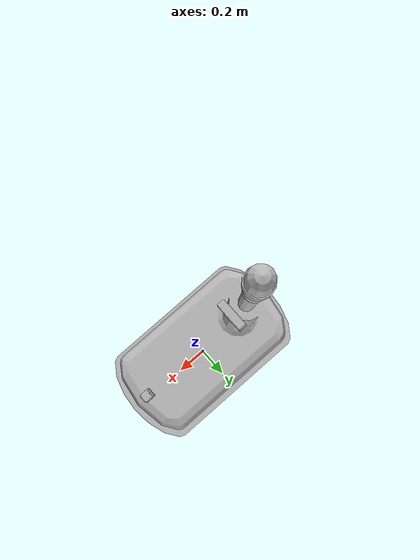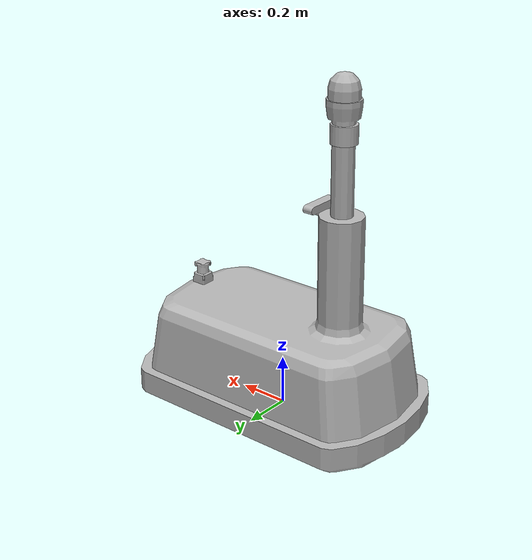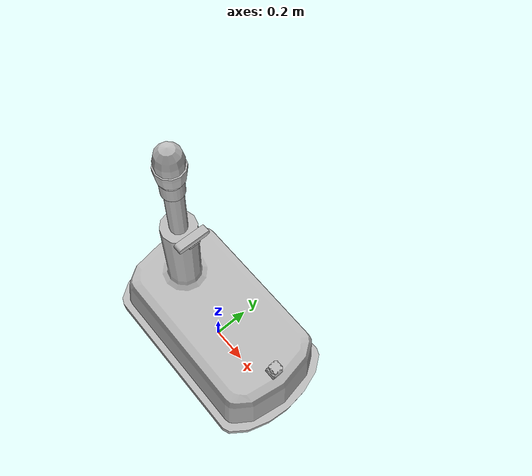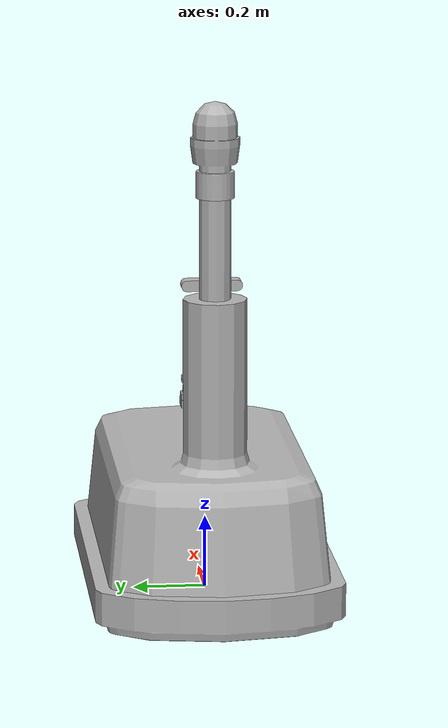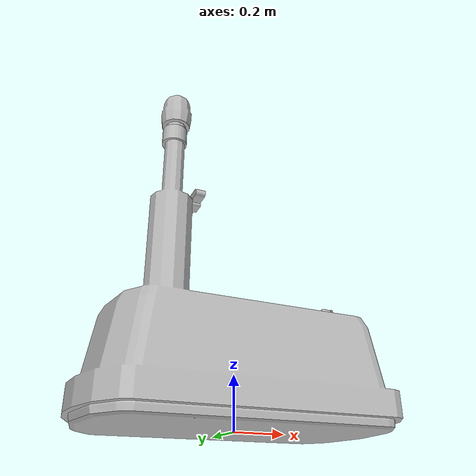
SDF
<?xml version="1.0" ?>
<sdf version="1.6">
  <model name="warehouse_robot">
    <static>false</static>
    <link name="base_link">
      <visual name="visual">
        <pose>0 0 0.0 0 0 -1.5708</pose>
        <geometry>
          <mesh>
            <uri>meshes/robot.dae</uri>
          </mesh>
        </geometry>
      </visual>
      <collision name="collision_base">
        <pose>0 0 0.20437 0 0 0</pose>
        <geometry>
          <box>
            <size>0.55508 1.0228 0.40874</size>
          </box>
        </geometry>
      </collision>
      <collision name="collision_bumper">
        <pose>0 0 0.062205 0 0 0</pose>
        <geometry>
          <box>
            <size>0.67266 1.17126 0.12441</size>
          </box>
        </geometry>
      </collision>
      <collision name="collision_column_large">
        <pose>0 -0.27539 0.43738 0 0 0</pose>
        <geometry>
          <cylinder>
            <radius>0.08652</radius>
            <length>0.87476</length>
          </cylinder>
        </geometry>
      </collision>
      <collision name="collision_column_small">
        <pose>0 -0.27539 0.70424 0 0 0</pose>
        <geometry>
          <cylinder>
            <radius>0.04261</radius>
            <length>1.40848</length>
          </cylinder>
        </geometry>
      </collision>
      <!-- IMU -->
      <sensor name="imu" type="imu">
        <pose>0 0 0.2 0 0 0</pose>
        <update_rate>100</update_rate>
        <always_on>true</always_on>
        <topic>/robot/imu</topic>
        <imu>
        </imu>
        <gz_frame_id>base_link</gz_frame_id>
      </sensor>
    </link>

    <!-- Sensors: Camera, Lidar, IMU -->
    <link name="camera_rgbd_link">
      <visual name="visual_camera">
        <pose>-0.2 0 0.86 0 0 1.5708</pose>
        <geometry>
          <mesh>
            <uri>model://rgbd_camera/meshes/3dCamera.dae</uri>
          </mesh>
        </geometry>
      </visual>
      <sensor name="front_camera" type="camera">
        <pose>-0.2 0 0.86 0 0 0</pose>
        <update_rate>30</update_rate>
        <always_on>true</always_on>
        <visualize>true</visualize>
        <topic>/robot/camera/image</topic> <!-- Topic in Gazebo -->
        <camera>
          <horizontal_fov>1.047</horizontal_fov>
          <image>
            <width>640</width>
            <height>480</height>
            <format>R8G8B8</format>
          </image>
          <clip>
            <near>0.1</near>
            <far>50.0</far>
          </clip>
        </camera>
        <gz_frame_id>camera_rgbd_link</gz_frame_id>
      </sensor>
    </link>
    <link name="lidar_3d_link">
      <pose>-0.278 0 1.15 0 0 0</pose>
      <visual name="visual_lidar3d">
        <geometry>
          <mesh>
            <uri>model://lidar_3d/meshes/lidar_3d.dae</uri>
          </mesh>
        </geometry>
      </visual>
      <!-- LIDAR 3D (type Velodyne / Ouster simple) -->
      <sensor name="lidar_3d" type="gpu_lidar">
        <update_rate>10</update_rate>
        <always_on>true</always_on>
        <visualize>true</visualize>
        <topic>/robot/lidar3d</topic>
        <lidar>
          <scan>
            <horizontal>
              <samples>1024</samples>
              <resolution>1</resolution>
              <min_angle>-3.14159</min_angle>
              <max_angle>3.14159</max_angle>
            </horizontal>
            <vertical>
              <samples>64</samples>
              <resolution>1</resolution>
              <min_angle>-0.2897</min_angle>
              <max_angle>0.2897</max_angle>
            </vertical>
          </scan>
          <range>
            <min>0.8</min>
            <max>20</max>
            <resolution>0.003</resolution>
          </range>
          <noise>
            <type>gaussian</type>
            <mean>0</mean>
            <stddev>0.03</stddev>
          </noise>
        </lidar>
        <gz_frame_id>lidar_3d_link</gz_frame_id>
      </sensor>
    </link>
    <link name="lidar_2d_link">
      <pose>0.42 0 0.415 0 0 0</pose>
      <visual name="visual_lidar2d">
        <geometry>
          <mesh>
            <uri>model://lidar_2d/meshes/lidar_2d.dae</uri>
          </mesh>
        </geometry>
      </visual>
      <sensor name="lidar_2d" type="gpu_lidar">
        <update_rate>20</update_rate>
        <always_on>true</always_on>
        <visualize>true</visualize>
        <topic>/robot/lidar2d/scan</topic>
        <lidar>
          <scan>
            <horizontal>
              <samples>920</samples>
              <resolution>1</resolution>
              <min_angle>-2.8</min_angle>
              <max_angle>2.8</max_angle>
            </horizontal>
          </scan>
          <range>
            <min>0.5</min>
            <max>10</max>
            <resolution>0.03</resolution>
          </range>
          <noise>
            <type>gaussian</type>
            <mean>0</mean>
            <stddev>0.01</stddev>
          </noise>
        </lidar>
        <gz_frame_id>lidar_2d_link</gz_frame_id>
      </sensor>
    </link>
    <!-- Wheels: links           -->
    <!-- FRONT LEFT WHEEL -->
    <link name="left_front_wheel_link">
      <pose>0.25 0.26 0.129 -1.57 0.0 0</pose>
      <inertial>
        <mass>1.0</mass>
        <inertia>
          <ixx>0.001</ixx>
          <ixy>0.0</ixy>
          <ixz>0.0</ixz>
          <iyy>0.001</iyy>
          <iyz>0.0</iyz>
          <izz>0.001</izz>
        </inertia>
      </inertial>
      <collision name="left_front_wheel_collision">
        <geometry>
          <cylinder>
            <radius>0.129</radius>
            <length>0.05</length>
          </cylinder>
        </geometry>
      </collision>
      <visual name="left_front_wheel_visual">
        <geometry>
          <cylinder>
            <radius>0.129</radius>
            <length>0.05</length>
          </cylinder>
        </geometry>
      </visual>
    </link>
    <!-- REAR LEFT WHEEL -->
    <link name="left_rear_wheel_link">
      <pose>-0.25 0.26 0.129 -1.57 0 0</pose>
      <inertial>
        <mass>1.0</mass>
        <inertia>
          <ixx>0.001</ixx>
          <ixy>0.0</ixy>
          <ixz>0.0</ixz>
          <iyy>0.001</iyy>
          <iyz>0.0</iyz>
          <izz>0.001</izz>
        </inertia>
      </inertial>
      <collision name="left_rear_wheel_collision">
        <geometry>
          <cylinder>
            <radius>0.129</radius>
            <length>0.05</length>
          </cylinder>
        </geometry>
      </collision>
      <visual name="left_rear_wheel_visual">
        <geometry>
          <cylinder>
            <radius>0.129</radius>
            <length>0.05</length>
          </cylinder>
        </geometry>
      </visual>
    </link>
    <!-- FRONT RIGHT WHEEL -->
    <link name="right_front_wheel_link">
      <pose>0.25 -0.26 0.129 -1.57 0 0</pose>
      <inertial>
        <mass>1.0</mass>
        <inertia>
          <ixx>0.001</ixx>
          <ixy>0.0</ixy>
          <ixz>0.0</ixz>
          <iyy>0.001</iyy>
          <iyz>0.0</iyz>
          <izz>0.001</izz>
        </inertia>
      </inertial>
      <collision name="right_front_wheel_collision">
        <geometry>
          <cylinder>
            <radius>0.129</radius>
            <length>0.05</length>
          </cylinder>
        </geometry>
      </collision>
      <visual name="right_front_wheel_visual">
        <geometry>
          <cylinder>
            <radius>0.129</radius>
            <length>0.05</length>
          </cylinder>
        </geometry>
      </visual>
    </link>
    <!-- REAR RIGHT WHEEL -->
    <link name="right_rear_wheel_link">
      <pose>-0.25 -0.26 0.129 -1.57 0 0</pose>
      <inertial>
        <mass>1.0</mass>
        <inertia>
          <ixx>0.001</ixx>
          <ixy>0.0</ixy>
          <ixz>0.0</ixz>
          <iyy>0.001</iyy>
          <iyz>0.0</iyz>
          <izz>0.001</izz>
        </inertia>
      </inertial>
      <collision name="right_rear_wheel_collision">
        <geometry>
          <cylinder>
            <radius>0.129</radius>
            <length>0.05</length>
          </cylinder>
        </geometry>
      </collision>
      <visual name="right_rear_wheel_visual">
        <geometry>
          <cylinder>
            <radius>0.129</radius>
            <length>0.05</length>
          </cylinder>
        </geometry>
      </visual>
    </link>
    <!-- Wheels: Joint           -->
    <joint name="left_front_wheel" type="revolute">
      <parent>base_link</parent>
      <child>left_front_wheel_link</child>
      <pose>0 0 0 0 0 0</pose>
        <axis>
            <xyz>0 0 1</xyz>
            <limit>
              <lower>-1.79769e+308</lower>
              <upper>1.79769e+308</upper>
            </limit>
        </axis>
    </joint>
    <joint name="left_rear_wheel" type="revolute">
      <parent>base_link</parent>
      <child>left_rear_wheel_link</child>
      <pose>0 0 0 0 0 0</pose>
         <axis>
            <xyz>0 0 1</xyz>
            <limit>
              <lower>-1.79769e+308</lower>
              <upper>1.79769e+308</upper>
            </limit>
        </axis>
    </joint>
    <joint name="right_front_wheel" type="revolute">
      <parent>base_link</parent>
      <child>right_front_wheel_link</child>
      <pose>0 0 0 0 0 0</pose>
        <axis>
            <xyz>0 0 1</xyz>
            <limit>
              <lower>-1.79769e+308</lower>
              <upper>1.79769e+308</upper>
            </limit>
        </axis>
    </joint>
    <joint name="right_rear_wheel" type="revolute">
      <parent>base_link</parent>
      <child>right_rear_wheel_link</child>
      <pose>0 0 0 0 0 0</pose>
         <axis>
            <xyz>0 0 1</xyz>
            <limit>
              <lower>-1.79769e+308</lower>
              <upper>1.79769e+308</upper>
            </limit>
        </axis>
    </joint>
    <!-- Sensor: Joint           -->
    <joint name="joint_camera_rgbd" type="fixed">
      <parent>base_link</parent>
      <child>camera_rgbd_link</child>
      <pose>0 0 0 0 0 0</pose>
    </joint>
    <joint name="joint_lidar_3d" type="fixed">
      <parent>base_link</parent>
      <child>lidar_3d_link</child>
      <pose>0 0 0 0 0 0</pose>
    </joint>
    <joint name="joint_lidar_2d" type="fixed">
      <parent>base_link</parent>
      <child>lidar_2d_link</child>
      <pose>0 0 0 0 0 0</pose>
    </joint>

    <!-- Plugin DiffDrive                                                      -->
    <plugin filename="libignition-gazebo-diff-drive-system.so" name="ignition::gazebo::systems::DiffDrive">
      <left_joint>left_front_wheel</left_joint>
      <left_joint>left_rear_wheel</left_joint>
      <right_joint>right_front_wheel</right_joint>
      <right_joint>right_rear_wheel</right_joint>
      <wheel_separation>0.52</wheel_separation>
      <wheel_radius>0.129</wheel_radius>
      <odom_publish_frequency>10</odom_publish_frequency>
      <topic>/robot/cmd_vel</topic>
      <odom_topic>/robot/odometry</odom_topic>
      <tf_topic>/robot/tf_odom_to_baselink</tf_topic>
      <frame_id>odom</frame_id>
      <child_frame_id>/base_link</child_frame_id>
    </plugin>
  </model>
</sdf>
